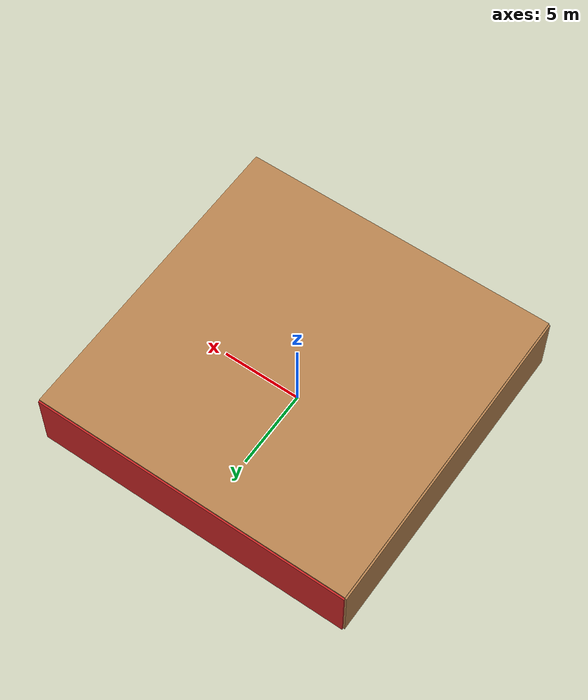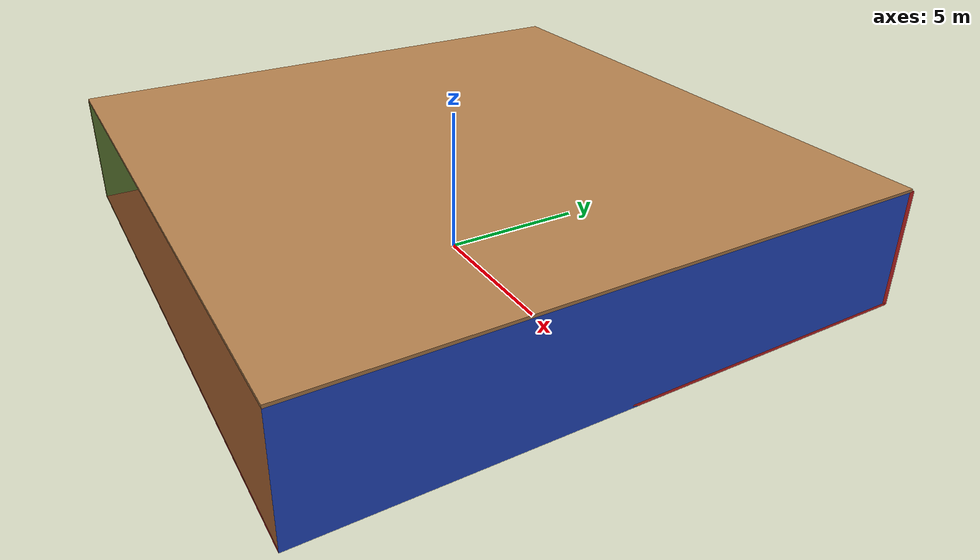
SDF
<sdf version="1.4">
 <world name="default">
  <physics type="ode">
   <max_step_size>0.001</max_step_size>
   <real_time_factor>1</real_time_factor>
   <real_time_update_rate>1000</real_time_update_rate>
   <gravity>0 0 -9.8</gravity>
  </physics>
  <scene><ambient>0.4 0.4 0.4 1</ambient><background>0.7 0.7 0.7 1</background><shadows>1</shadows></scene>
  <model name="Surrounding">
   <static>1</static>
   <link name="Ceiling">
    <collision name="Ceiling_Collision"><geometry><box><size>20 20 0.1</size></box></geometry></collision>
    <visual name="Ceiling_Visual">
     <geometry><box><size>20 20 0.1</size></box></geometry>
     <material>
      <script><uri>file://media/materials/scripts/gazebo.material</uri><name>Gazebo/Wood</name></script>
     </material>
    </visual>
    <pose>0 0 4.05 0 0 0</pose>
   </link>
   <link name="Wall_South">
    <collision name="Wall_South_Collision">
     <geometry><box><size>20 0 4</size></box></geometry>
     <pose>0 0 2 0 -0 0</pose>
    </collision>
    <visual name="Wall_South_Visual">
     <pose>0 0 2 0 -0 0</pose>
     <geometry><box><size>20 0 4</size></box></geometry>
     <material>
      <script><uri>file://media/materials/scripts/gazebo.material</uri><name>Gazebo/GreenTransparent</name></script>
     </material>
    </visual>
    <velocity_decay><linear>0</linear><angular>0</angular></velocity_decay>
    <pose>0 -10 0 0 -0 0</pose>
   </link>
   <link name="Wall_East">
    <collision name="Wall_21_Collision">
     <geometry><box><size>20 0 4</size></box></geometry>
     <pose>0 0 2 0 -0 0</pose>
    </collision>
    <visual name="Wall_21_Visual">
     <pose>0 0 2 0 -0 0</pose>
     <geometry><box><size>20 0 4</size></box></geometry>
     <material>
      <script><uri>file://media/materials/scripts/gazebo.material</uri><name>Gazebo/BlueGlow</name></script>
     </material>
    </visual>
    <velocity_decay><linear>0</linear><angular>0</angular></velocity_decay>
    <pose>10 0 0 0 -0 1.5708</pose>
   </link>
   <link name="Wall_North">
    <collision name="Wall_22_Collision">
     <geometry><box><size>20 0.2 4</size></box></geometry>
     <pose>0 0 2 0 -0 0</pose>
    </collision>
    <visual name="Wall_22_Visual">
     <pose>0 0 2 0 -0 0</pose>
     <geometry><box><size>20 0.2 4</size></box></geometry>
     <material>
      <script><uri>file://media/materials/scripts/gazebo.material</uri><name>Gazebo/RedBright</name></script>
     </material>
    </visual>
    <velocity_decay><linear>0</linear><angular>0</angular></velocity_decay>
    <pose>0 10 0 0 -0 0</pose>
   </link>
   <link name="Wall_West">
    <collision name="Wall_23_Collision">
     <geometry><box><size>20 0.2 4</size></box></geometry>
     <pose>0 0 2 0 -0 0</pose>
    </collision>
    <visual name="Wall_23_Visual">
     <pose>0 0 2 0 -0 0</pose>
     <geometry><box><size>20 0.2 4</size></box></geometry>
     <material>
      <script><uri>file://media/materials/scripts/gazebo.material</uri><name>Gazebo/Wood</name></script>
     </material>
    </visual>
    <velocity_decay><linear>0</linear><angular>0</angular></velocity_decay>
    <pose>-10 0 0 0 0 -1.5708</pose>
   </link>
   <link name="Ground_link">
    <collision name="collision">
     <pose>0 0 .05 0 -0 0</pose>
     <geometry><box><size>20 20 0.1</size></box></geometry>
    </collision>
    <visual name="visual">
     <pose>0 0 .05 0 -0 0</pose>
     <geometry><box><size>20 20 0.1</size></box></geometry>
     <material>
      <script><uri>file://media/materials/scripts/gazebo.material</uri><name>Gazebo/Red</name></script>
     </material>
    </visual>
   </link>
   <static>1</static>
  </model>
  <spherical_coordinates>
   <surface_model>EARTH_WGS84</surface_model>
   <latitude_deg>0</latitude_deg>
   <longitude_deg>0</longitude_deg>
   <elevation>0</elevation>
   <heading_deg>0</heading_deg>
  </spherical_coordinates>
  <light name="lightball_0" type="diffuse">
   <diffuse>0.8 0.8 0.8 1</diffuse>
   <specular>0.2 0.2 0.2 1</specular>
   <attenuation>
    <range>100</range>
    <constant>0.7</constant>
    <linear>0.01</linear>
    <quadratic>0.001</quadratic>
   </attenuation>
   <direction>-0.5 0.1 -0.9</direction>
   <pose>4.47391245093 2.32343939378 3.54604566042 0 0 0</pose>
  </light>
  <light name="lightball_1" type="diffuse">
   <diffuse>0.8 0.8 0.8 1</diffuse>
   <specular>0.2 0.2 0.2 1</specular>
   <attenuation>
    <range>100</range>
    <constant>0.7</constant>
    <linear>0.01</linear>
    <quadratic>0.001</quadratic>
   </attenuation>
   <direction>-0.5 0.1 -0.9</direction>
   <pose>-0.608442213432 2.22888828977 2.59058711505 0 0 0</pose>
  </light>
  <light name="lightball_2" type="diffuse">
   <diffuse>0.8 0.8 0.8 1</diffuse>
   <specular>0.2 0.2 0.2 1</specular>
   <attenuation>
    <range>100</range>
    <constant>0.7</constant>
    <linear>0.01</linear>
    <quadratic>0.001</quadratic>
   </attenuation>
   <direction>-0.5 0.1 -0.9</direction>
   <pose>-1.03263470162 -2.52727467215 1.56032942997 0 0 0</pose>
  </light>
  <light name="lightball_3" type="diffuse">
   <diffuse>0.8 0.8 0.8 1</diffuse>
   <specular>0.2 0.2 0.2 1</specular>
   <attenuation>
    <range>100</range>
    <constant>0.7</constant>
    <linear>0.01</linear>
    <quadratic>0.001</quadratic>
   </attenuation>
   <direction>-0.5 0.1 -0.9</direction>
   <pose>9.87469841708 -1.50613427943 3.59549061705 0 0 0</pose>
  </light>
  <light name="lightball_4" type="diffuse">
   <diffuse>0.8 0.8 0.8 1</diffuse>
   <specular>0.2 0.2 0.2 1</specular>
   <attenuation>
    <range>100</range>
    <constant>0.7</constant>
    <linear>0.01</linear>
    <quadratic>0.001</quadratic>
   </attenuation>
   <direction>-0.5 0.1 -0.9</direction>
   <pose>8.73310999284 -4.78252238693 2.43689889199 0 0 0</pose>
  </light>
  <light name="lightball_5" type="diffuse">
   <diffuse>0.8 0.8 0.8 1</diffuse>
   <specular>0.2 0.2 0.2 1</specular>
   <attenuation>
    <range>100</range>
    <constant>0.7</constant>
    <linear>0.01</linear>
    <quadratic>0.001</quadratic>
   </attenuation>
   <direction>-0.5 0.1 -0.9</direction>
   <pose>-2.57429303456 8.40701884582 1.77598782377 0 0 0</pose>
  </light>
  <light name="lightball_6" type="diffuse">
   <diffuse>0.8 0.8 0.8 1</diffuse>
   <specular>0.2 0.2 0.2 1</specular>
   <attenuation>
    <range>100</range>
    <constant>0.7</constant>
    <linear>0.01</linear>
    <quadratic>0.001</quadratic>
   </attenuation>
   <direction>-0.5 0.1 -0.9</direction>
   <pose>-0.481166811337 -6.24881601315 2.98394017364 0 0 0</pose>
  </light>
  <light name="lightball_7" type="diffuse">
   <diffuse>0.8 0.8 0.8 1</diffuse>
   <specular>0.2 0.2 0.2 1</specular>
   <attenuation>
    <range>100</range>
    <constant>0.7</constant>
    <linear>0.01</linear>
    <quadratic>0.001</quadratic>
   </attenuation>
   <direction>-0.5 0.1 -0.9</direction>
   <pose>2.31877230556 8.76085049299 1.74630010301 0 0 0</pose>
  </light>
  <light name="lightball_8" type="diffuse">
   <diffuse>0.8 0.8 0.8 1</diffuse>
   <specular>0.2 0.2 0.2 1</specular>
   <attenuation>
    <range>100</range>
    <constant>0.7</constant>
    <linear>0.01</linear>
    <quadratic>0.001</quadratic>
   </attenuation>
   <direction>-0.5 0.1 -0.9</direction>
   <pose>0.928490184633 -0.643561146739 2.30453510396 0 0 0</pose>
  </light>
  <light name="lightball_9" type="diffuse">
   <diffuse>0.8 0.8 0.8 1</diffuse>
   <specular>0.2 0.2 0.2 1</specular>
   <attenuation>
    <range>100</range>
    <constant>0.7</constant>
    <linear>0.01</linear>
    <quadratic>0.001</quadratic>
   </attenuation>
   <direction>-0.5 0.1 -0.9</direction>
   <pose>7.57528785528 0.340447207594 3.140118601 0 0 0</pose>
  </light>
  <include><uri>model://cabinet</uri><pose>-7.0722488194 7.81662946571 0 0 0 2.14431108724</pose></include>
  <include>
   <uri>model://construction_cone</uri>
   <pose>4.24894750596 -6.63660699233 0 0 0 1.44478894856</pose>
  </include>
  <include><uri>model://cabinet</uri><pose>4.4438057255 -1.15544474768 0 0 0 2.22077412543</pose></include>
  <include>
   <uri>model://construction_cone</uri>
   <pose>5.09520046725 6.37340626657 0 0 0 2.1367067811</pose>
  </include>
  <include>
   <uri>model://textured_shapes</uri>
   <pose>7.1204561135 -1.01389019658 0 0 0 0.287176458957</pose>
  </include>
  <include>
   <uri>model://robocup_3Dsim_goal</uri>
   <pose>6.80765328518 8.61339004796 0 0 0 2.11846618221</pose>
  </include>
 </world>
</sdf>

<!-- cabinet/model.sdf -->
<sdf version="1.5">
  <model name="cabinet">
    <static>true</static>
    <link name="cabinet_bottom_plate">
      <inertial>
        <pose>0 0 -1 0 0 0</pose>
        <inertia>
          <ixx>2.050000</ixx>
          <ixy>0</ixy>
          <ixz>0</ixz>
          <iyy>2.050000</iyy>
          <iyz>0</iyz>
          <izz>2.050000</izz>
        </inertia>
        <mass>25.000000</mass>
      </inertial>
      <collision name="cabinet_bottom_plate_geom">
        <pose>0 0 0.010000 0 0 0</pose>
        <geometry>
          <box>
            <size>0.450000 0.450000 0.020000</size>
          </box>
        </geometry>
      </collision>
      <visual name="cabinet_bottom_plate_geom_visual">
        <pose>0 0 0.010000 0 0 0</pose>
        <geometry>
          <box>
            <size>0.450000 0.450000 0.020000</size>
          </box>
        </geometry>
        <material>
          <script>
            <uri>model://media/materials/scripts/gazebo.material</uri>
            <name>Gazebo/Wood</name>
          </script>
        </material>
      </visual>
      <collision name="cabinet_bottom_plate_geom_cabinet_back_plate">
        <pose>0.235000 0 0.510000 0 0 0</pose>
        <geometry>
          <box>
            <size>0.020000 0.450000 1.020000</size>
          </box>
        </geometry>
      </collision>
      <visual name="cabinet_bottom_plate_geom_cabinet_back_plate_visual">
        <pose>0.235000 0 0.510000 0 0 0</pose>
        <geometry>
          <box>
            <size>0.020000 0.450000 1.020000</size>
          </box>
        </geometry>
        <material>
          <script>
            <uri>model://media/materials/scripts/gazebo.material</uri>
            <name>Gazebo/Wood</name>
          </script>
        </material>
      </visual>
      <collision name="cabinet_bottom_plate_geom_cabinet_left_plate">
        <pose>0 0.235000 0.510000 0 0 0</pose>
        <geometry>
          <box>
            <size>0.450000 0.020000 1.020000</size>
          </box>
        </geometry>
      </collision>
      <visual name="cabinet_bottom_plate_geom_cabinet_left_plate_visual">
        <pose>0 0.235000 0.510000 0 0 0</pose>
        <geometry>
          <box>
            <size>0.450000 0.020000 1.020000</size>
          </box>
        </geometry>
        <material>
          <script>
            <uri>model://media/materials/scripts/gazebo.material</uri>
            <name>Gazebo/Wood</name>
          </script>
        </material>
      </visual>
      <collision name="cabinet_bottom_plate_geom_cabinet_middle_plate">
        <pose>0 0 0.510000 0 0 0</pose>
        <geometry>
          <box>
            <size>0.450000 0.450000 0.020000</size>
          </box>
        </geometry>
      </collision>
      <visual name="cabinet_bottom_plate_geom_cabinet_middle_plate_visual">
        <pose>0 0 0.510000 0 0 0</pose>
        <geometry>
          <box>
            <size>0.450000 0.450000 0.020000</size>
          </box>
        </geometry>
        <material>
          <script>
            <uri>model://media/materials/scripts/gazebo.material</uri>
            <name>Gazebo/Wood</name>
          </script>
        </material>
      </visual>
      <collision name="cabinet_bottom_plate_geom_cabinet_right_plate">
        <pose>0 -0.235000 0.510000 0 0 0</pose>
        <geometry>
          <box>
            <size>0.450000 0.020000 1.020000</size>
          </box>
        </geometry>
      </collision>
      <visual name="cabinet_bottom_plate_geom_cabinet_right_plate_visual">
        <pose>0 -0.235000 0.510000 0 0 0</pose>
        <geometry>
          <box>
            <size>0.450000 0.020000 1.020000</size>
          </box>
        </geometry>
        <material>
          <script>
            <uri>model://media/materials/scripts/gazebo.material</uri>
            <name>Gazebo/Wood</name>
          </script>
        </material>
      </visual>
      <collision name="cabinet_bottom_plate_geom_cabinet_top_plate">
        <pose>0 0 1.010000 0 0 0</pose>
        <geometry>
          <box>
            <size>0.450000 0.450000 0.020000</size>
          </box>
        </geometry>
      </collision>
      <visual name="cabinet_bottom_plate_geom_cabinet_top_plate_visual">
        <pose>0 0 1.010000 0 0 0</pose>
        <geometry>
          <box>
            <size>0.450000 0.450000 0.020000</size>
          </box>
        </geometry>
        <material>
          <script>
            <uri>model://media/materials/scripts/gazebo.material</uri>
            <name>Gazebo/Wood</name>
          </script>
        </material>
      </visual>
    </link>
  </model>
</sdf>

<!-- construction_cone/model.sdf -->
<sdf version="1.5">
  <model name="Construction Cone">
    <link name="link">
      <collision name="collision">
        <geometry>
          <mesh>
            <scale>10 10 10</scale>
            <uri>file://isr-testbed/construction_cone/meshes/construction_cone.dae</uri>
          </mesh>
        </geometry>
      </collision>
      <visual name="visual">
        <geometry>
          <mesh>
            <scale>10 10 10</scale>
            <uri>file://isr-testbed/construction_cone/meshes/construction_cone.dae</uri>
          </mesh>
        </geometry>
      </visual>
    </link>
  </model>
</sdf>

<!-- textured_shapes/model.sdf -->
<sdf version="1.6">
  <model name="textured_shapes">
    <pose>0 0 0.5 0 0 0</pose>
    <link name="box">
      <pose>0 -1.5 0 0 0 0</pose>
      <collision name="collision">
        <geometry>
          <box>
            <size>1 1 1</size>
          </box>
        </geometry>
      </collision>
      <visual name="visual">
        <geometry>
          <box>
            <size>1 1 1</size>
          </box>
        </geometry>
        <material>
          <script>
            <uri>model://../model_source/models/textured_shapes/materials/scripts</uri>
            <uri>model://../model_source/models/textured_shapes/materials/textures</uri>
            <name>TexturedShape/Squares</name>
          </script>
        </material>
      </visual>
    </link>
    <link name="sphere">
      <collision name="collision">
        <geometry>
          <sphere>
            <radius>0.5</radius>
          </sphere>
        </geometry>
      </collision>
      <visual name="visual">
        <geometry>
          <sphere>
            <radius>0.5</radius>
          </sphere>
        </geometry>
        <material>
          <script>
            <uri>model://../model_source/models/textured_shapes/materials/scripts</uri>
            <uri>model://../model_source/models/textured_shapes/materials/textures</uri>
            <name>TexturedShape/Squares</name>
          </script>
        </material>
      </visual>
    </link>
    <link name="cylinder">
      <pose>0 1.5 0 0 0 0</pose>
      <collision name="collision">
        <geometry>
          <cylinder>
            <radius>0.5</radius>
            <length>1</length>
          </cylinder>
        </geometry>
      </collision>
      <visual name="visual">
        <geometry>
          <cylinder>
            <radius>0.5</radius>
            <length>1</length>
          </cylinder>
        </geometry>
        <material>
          <script>
            <uri>model://../model_source/models/textured_shapes/materials/scripts</uri>
            <uri>model://../model_source/models/textured_shapes/materials/textures</uri>
            <name>TexturedShape/Squares</name>
          </script>
        </material>
      </visual>
    </link>
  </model>
</sdf>

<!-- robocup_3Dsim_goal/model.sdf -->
<sdf version="1.5">
  <model name="robocup_3d_goal">
    <static>true</static>
    <link name="left_post">
      <pose>0 1.05 0.45 0 0 0</pose>
      <collision name="collision">
        <geometry>
          <cylinder>
            <radius>0.05</radius>
            <length>0.9</length>
          </cylinder>
        </geometry>
      </collision>
      <visual name="visual">
        <geometry>
          <cylinder>
            <radius>0.05</radius>
            <length>0.9</length>
          </cylinder>
        </geometry>
        <material>
          <script>
            <uri>file://media/materials/scripts/gazebo.material</uri>
            <name>Gazebo/ZincYellow</name>
          </script>
        </material>
      </visual>
    </link>
    <link name="left_support_horiz_lower">
      <pose>0.30 1.05 0.01 0 0 0</pose>
      <collision name="collision">
        <geometry>
          <box>
            <size>0.50 0.02 0.02</size>
          </box>
        </geometry>
      </collision>
      <visual name="visual">
        <geometry>
          <box>
            <size>0.50 0.02 0.02</size>
          </box>
        </geometry>
        <material>
          <script>
            <uri>file://media/materials/scripts/gazebo.material</uri>
            <name>Gazebo/White</name>
          </script>
        </material>
      </visual>
    </link>
    <link name="left_support_horiz_upper">
      <pose>0.30 1.05 0.79 0 0 0</pose>
      <collision name="collision">
        <geometry>
          <box>
            <size>0.50 0.02 0.02</size>
          </box>
        </geometry>
      </collision>
      <visual name="visual">
        <geometry>
          <box>
            <size>0.50 0.02 0.02</size>
          </box>
        </geometry>
        <material>
          <script>
            <uri>file://media/materials/scripts/gazebo.material</uri>
            <name>Gazebo/White</name>
          </script>
        </material>
      </visual>
    </link>
    <link name="left_support_vertical">
      <pose>0.56 1.05 0.4 0 1.5708 0</pose>
      <collision name="collision">
        <geometry>
          <box>
            <size>0.80 0.02 0.02</size>
          </box>
        </geometry>
      </collision>
      <visual name="visual">
        <geometry>
          <box>
            <size>0.80 0.02 0.02</size>
          </box>
        </geometry>
        <material>
          <script>
            <uri>file://media/materials/scripts/gazebo.material</uri>
            <name>Gazebo/White</name>
          </script>
        </material>
      </visual>
    </link>
    <link name="right_support_horiz_lower">
      <pose>0.30 -1.05 0.01 0 0 0</pose>
      <collision name="collision">
        <geometry>
          <box>
            <size>0.50 0.02 0.02</size>
          </box>
        </geometry>
      </collision>
      <visual name="visual">
        <geometry>
          <box>
            <size>0.50 0.02 0.02</size>
          </box>
        </geometry>
        <material>
          <script>
            <uri>file://media/materials/scripts/gazebo.material</uri>
            <name>Gazebo/White</name>
          </script>
        </material>
      </visual>
    </link>
    <link name="right_support_horiz_upper">
      <pose>0.30 -1.05 0.79 0 0 0</pose>
      <collision name="collision">
        <geometry>
          <box>
            <size>0.50 0.02 0.02</size>
          </box>
        </geometry>
      </collision>
      <visual name="visual">
        <geometry>
          <box>
            <size>0.50 0.02 0.02</size>
          </box>
        </geometry>
        <material>
          <script>
            <uri>file://media/materials/scripts/gazebo.material</uri>
            <name>Gazebo/White</name>
          </script>
        </material>
      </visual>
    </link>
    <link name="right_support_vertical">
      <pose>0.56 -1.05 0.4 0 1.5708 0</pose>
      <collision name="collision">
        <geometry>
          <box>
            <size>0.80 0.02 0.02</size>
          </box>
        </geometry>
      </collision>
      <visual name="visual">
        <geometry>
          <box>
            <size>0.80 0.02 0.02</size>
          </box>
        </geometry>
        <material>
          <script>
            <uri>file://media/materials/scripts/gazebo.material</uri>
            <name>Gazebo/White</name>
          </script>
        </material>
      </visual>
    </link>
    <link name="center_support_horiz_lower">
      <pose>0.56 0 0.01 0 1.5708 0</pose>
      <collision name="collision">
        <geometry>
          <box>
            <size>0.02 2.08 0.02</size>
          </box>
        </geometry>
      </collision>
      <visual name="visual">
        <geometry>
          <box>
            <size>0.02 2.08 0.02</size>
          </box>
        </geometry>
        <material>
          <script>
            <uri>file://media/materials/scripts/gazebo.material</uri>
            <name>Gazebo/White</name>
          </script>
        </material>
      </visual>
    </link>
    <link name="center_support_horiz_upper">
      <pose>0.56 0 0.79 0 1.5708 0</pose>
      <collision name="collision">
        <geometry>
          <box>
            <size>0.02 2.08 0.02</size>
          </box>
        </geometry>
      </collision>
      <visual name="visual">
        <geometry>
          <box>
            <size>0.02 2.08 0.02</size>
          </box>
        </geometry>
        <material>
          <script>
            <uri>file://media/materials/scripts/gazebo.material</uri>
            <name>Gazebo/White</name>
          </script>
        </material>
      </visual>
    </link>
    <link name="right_post">
      <pose>0 -1.05 0.45 0 0 0</pose>
      <collision name="collision">
        <geometry>
          <cylinder>
            <radius>0.05</radius>
            <length>0.9</length>
          </cylinder>
        </geometry>
      </collision>
      <visual name="visual">
        <geometry>
          <cylinder>
            <radius>0.05</radius>
            <length>0.9</length>
          </cylinder>
        </geometry>
        <material>
          <script>
            <uri>file://media/materials/scripts/gazebo.material</uri>
            <name>Gazebo/ZincYellow</name>
          </script>
        </material>
      </visual>
    </link>
    <link name="crossbar">
      <pose>0 0 0.85 1.57 1.57 0</pose>
      <collision name="collision">
        <geometry>
          <cylinder>
            <radius>0.05</radius>
            <length>2.0</length>
          </cylinder>
        </geometry>
      </collision>
      <visual name="visual">
        <geometry>
          <cylinder>
            <radius>0.05</radius>
            <length>2.0</length>
          </cylinder>
        </geometry>
        <material>
          <script>
            <uri>file://media/materials/scripts/gazebo.material</uri>
            <name>Gazebo/ZincYellow</name>
          </script>
        </material>
      </visual>
    </link>
    <link name="center_net">
      <pose>0.56 0 0.40 0 0 0</pose>
      <collision name="collision">
        <geometry>
          <box>
            <size>0.01 2.1 0.80</size>
          </box>
        </geometry>
      </collision>
      <visual name="visual">
        <geometry>
          <box>
            <size>0.01 2.1 0.80</size>
          </box>
        </geometry>
        <material>
          <script>
            <uri>model://../model_source/models/robocup09_spl_field/materials/scripts/</uri>
            <uri>model://../model_source/models/robocup09_spl_field/materials/textures/</uri>
            <name>RoboCup/Net</name>
          </script>
        </material>
      </visual>
    </link>
    <link name="left_net">
      <pose>0.30 1.05 0.40 0 0 0</pose>
      <collision name="collision">
        <geometry>
          <box>
            <size>0.50 0.01 0.76</size>
          </box>
        </geometry>
      </collision>
      <visual name="visual">
        <geometry>
          <box>
            <size>0.50 0.01 0.76</size>
          </box>
        </geometry>
        <material>
          <script>
            <uri>model://../model_source/models/robocup09_spl_field/materials/scripts/</uri>
            <uri>model://../model_source/models/robocup09_spl_field/materials/textures/</uri>
            <name>RoboCup/Net</name>
          </script>
        </material>
      </visual>
    </link>
    <link name="right_net">
      <pose>0.30 -1.05 0.40 0 0 0</pose>
      <collision name="collision">
        <geometry>
          <box>
            <size>0.50 0.01 0.76</size>
          </box>
        </geometry>
      </collision>
      <visual name="visual">
        <geometry>
          <box>
            <size>0.50 0.01 0.76</size>
          </box>
        </geometry>
        <material>
          <script>
            <uri>model://../model_source/models/robocup09_spl_field/materials/scripts/</uri>
            <uri>model://../model_source/models/robocup09_spl_field/materials/textures/</uri>
            <name>RoboCup/Net</name>
          </script>
        </material>
      </visual>
    </link>
  </model>
</sdf>
